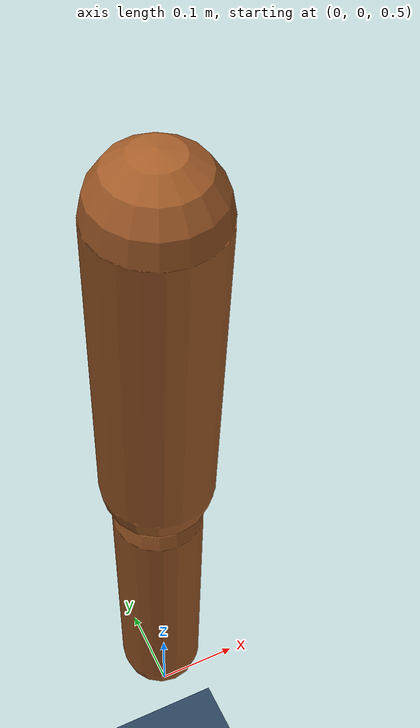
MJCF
<mujoco model="SimpleJoint">
    <option timestep="0.005"/>

    <visual>
        <map force="0.2" zfar="30"/>
        <rgba haze="0.15 0.25 0.35 1"/>
        <global offwidth="2560" offheight="1440" elevation="-20" azimuth="120"/>
    </visual>

    <statistic center="0 0 0.7"/>

    <asset>
        <texture type="skybox" builtin="gradient" rgb1=".3 .5 .7" rgb2="0 0 0" width="32" height="512"/>
        <texture name="body" type="cube" builtin="flat" mark="cross" width="127" height="1278" rgb1="0.8 0.6 0.4" rgb2="0.8 0.6 0.4" markrgb="1 1 1" random="0.01"/>
        <material name="body" texture="body" texuniform="true" rgba="0.8 0.6 .4 1"/>
        <texture name="grid" type="2d" builtin="checker" width="512" height="512" rgb1=".1 .2 .3" rgb2=".2 .3 .4"/>
        <material name="grid" texture="grid" texrepeat="1 1" texuniform="true" reflectance=".2"/>
    </asset>

    <default>
        <motor ctrlrange="-1 1" ctrllimited="true"/>
    <!--creates geometry classes for a standard shape to call later-->
        <default class="body">
            <geom type="capsule" condim="1" friction=".7" solimp=".9 .99 .003" solref=".015 1" material="body"/>
            <default class="thigh">
                <geom size=".06"/>
            </default>
            <default class="shin">
                <geom fromto="0 0 0 0 0 -.3"  size=".049"/>
            </default>
        </default>

    <!--defines joints-->
        <joint type="hinge" damping=".2" stiffness="1" armature=".01" limited="true" solimplimit="0 .99 .01"/>
        <default class="knee">
            <joint pos="0 0 .02" axis="0 -1 0" range="-160 2"/>
        </default>
        <default class="hip_y">
            <joint axis="0 1 0" range="-150 20"/>
        </default>

    </default>

<!--calls standard geometries and places them in world-->
    <worldbody>
        <geom name="floor" size="0 0 .05" type="plane" material="grid" condim="3"/>
        <light name="spotlight" mode="targetbodycom" target="thigh_right" diffuse=".8 .8 .8" specular="0.3 0.3 0.3" pos="0 -6 4" cutoff="30"/>
            <camera name="back" pos="-3 0 1" xyaxes="0 -1 0 1 0 2" mode="trackcom"/>
            <camera name="side" pos="0 -3 1" xyaxes="1 0 0 0 1 2" mode="trackcom"/>
            <!--embedded bodies will have coordinates relative to main-->
            <body name="thigh_right" pos="0 0 1.282">
                <joint name="hip_y_right" class="hip_y"/>
                <geom name="thigh_right" fromto="0 0 0 0 .01 -.34" class="thigh"/>
                <body name="shin_right" pos="0 .01 -.4">
                    <joint name="knee_right" class="knee"/>
                    <geom name="shin_right" class="shin"/>
                </body>
            </body>
    </worldbody>

    <tendon>
        <fixed name="hamstring_right" limited="true" range="-0.3 2">
            <joint joint="hip_y_right" coef=".5"/>
            <joint joint="knee_right" coef="-.5"/>
        </fixed>
    </tendon>

    <actuator>
        <motor name="knee_right"      gear="80"  joint="knee_right"/>
        <motor name="hip_y_right" gear="80" joint="hip_y_right"/>
    </actuator>

</mujoco>
